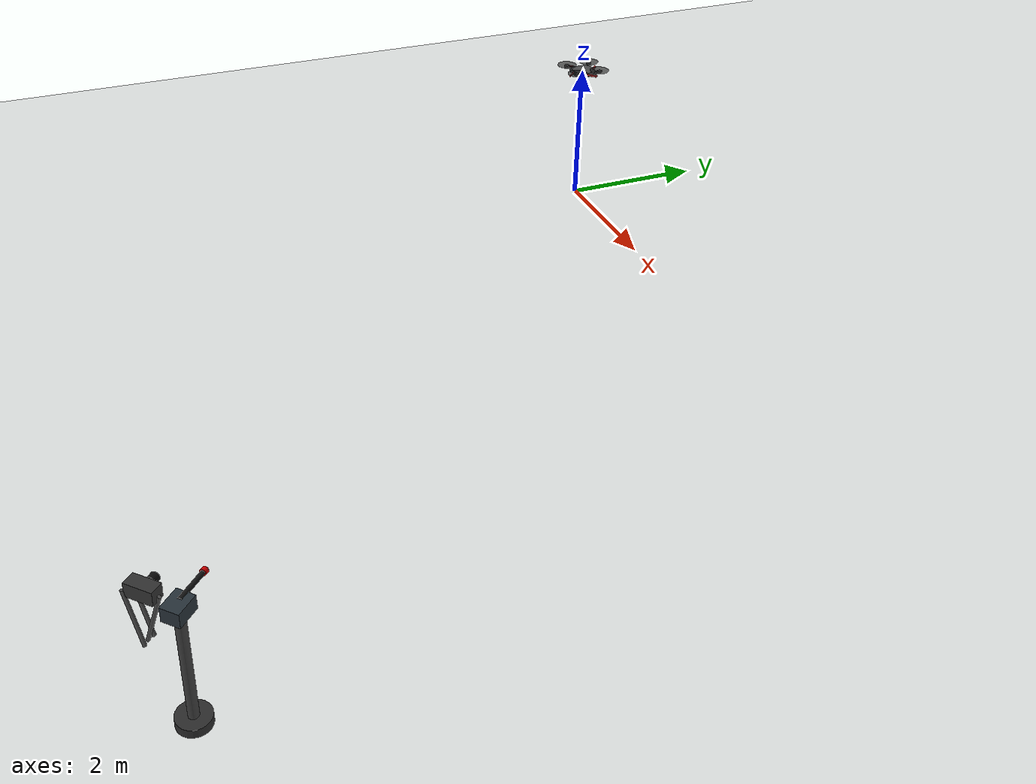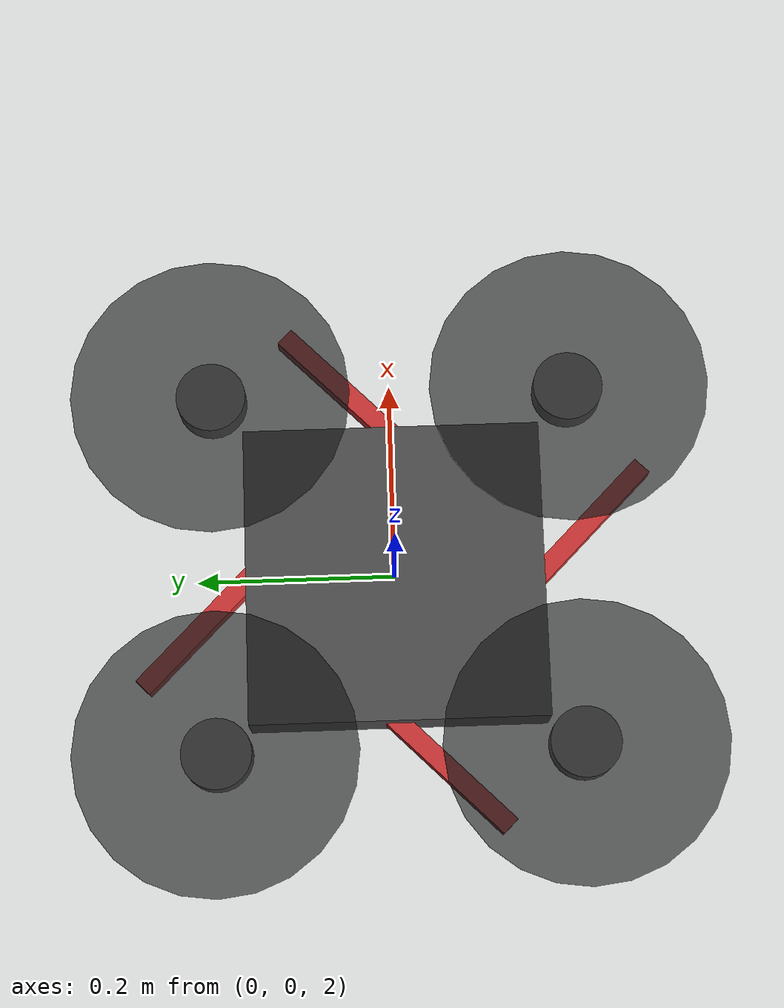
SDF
<?xml version="1.0" ?>
<sdf version="1.8">
  <world name="drone_world">

    <!-- ===== 物理引擎 ===== -->
    <physics name="1ms" type="ignored">
      <max_step_size>0.001</max_step_size>
      <real_time_factor>1.0</real_time_factor>
    </physics>

    <!-- ===== 插件 ===== -->
    <plugin
      filename="gz-sim-user-commands-system"
      name="gz::sim::systems::UserCommands">
    </plugin>
    <plugin
      filename="gz-sim-physics-system"
      name="gz::sim::systems::Physics">
    </plugin>
    <plugin
      filename="gz-sim-scene-broadcaster-system"
      name="gz::sim::systems::SceneBroadcaster">
    </plugin>
    <plugin
      filename="gz-sim-sensors-system"
      name="gz::sim::systems::Sensors">
    </plugin>

    <!-- ===== 光源 ===== -->
    <light type="directional" name="sun">
      <cast_shadows>true</cast_shadows>
      <pose>0 0 10 0 0 0</pose>
      <diffuse>0.8 0.8 0.8 1</diffuse>
      <specular>0.2 0.2 0.2 1</specular>
      <direction>-0.5 0.1 -0.9</direction>
    </light>

    <!-- ===== 地面 ===== -->
    <model name="ground_plane">
      <static>true</static>
      <link name="link">
        <collision name="collision">
          <geometry>
            <plane>
              <normal>0 0 1</normal>
              <size>100 100</size>
            </plane>
          </geometry>
        </collision>
        <visual name="visual">
          <geometry>
            <plane>
              <normal>0 0 1</normal>
              <size>100 100</size>
            </plane>
          </geometry>
          <material>
            <ambient>0.3 0.3 0.3</ambient>
            <diffuse>0.6 0.6 0.6</diffuse>
            <specular>0.1 0.1 0.1</specular>
          </material>
        </visual>
      </link>
    </model>

    <!-- ===== 四旋翼无人机 ===== -->
    <model name="quadcopter">
      <pose>0 0 2.0 0 0 0</pose>
      <link name="base_link">
        <!-- 轨迹由 SetEntityState 控制；关闭重力避免控制器启动前无人机下落。 -->
        <gravity>false</gravity>

        <!-- 中心机身 -->
        <visual name="body">
          <cast_shadows>false</cast_shadows>
          <geometry>
            <box>
              <size>0.30 0.30 0.06</size>
            </box>
          </geometry>
          <material>
            <ambient>0.2 0.2 0.2 1</ambient>
            <diffuse>0.3 0.3 0.3 1</diffuse>
          </material>
        </visual>

        <!-- 机臂 1: +X 方向 -->
        <visual name="arm_front">
          <cast_shadows>false</cast_shadows>
          <pose>0.15 0 0 0 0 0.785</pose>
          <geometry>
            <box>
              <size>0.30 0.02 0.02</size>
            </box>
          </geometry>
          <material>
            <ambient>0.8 0.2 0.2 1</ambient>
            <diffuse>0.8 0.2 0.2 1</diffuse>
          </material>
        </visual>

        <!-- 机臂 2: -X 方向 -->
        <visual name="arm_back">
          <cast_shadows>false</cast_shadows>
          <pose>-0.15 0 0 0 0 0.785</pose>
          <geometry>
            <box>
              <size>0.30 0.02 0.02</size>
            </box>
          </geometry>
          <material>
            <ambient>0.8 0.2 0.2 1</ambient>
            <diffuse>0.8 0.2 0.2 1</diffuse>
          </material>
        </visual>

        <!-- 机臂 3: +Y 方向 -->
        <visual name="arm_left">
          <cast_shadows>false</cast_shadows>
          <pose>0 0.15 0 0 0 -0.785</pose>
          <geometry>
            <box>
              <size>0.30 0.02 0.02</size>
            </box>
          </geometry>
          <material>
            <ambient>0.8 0.2 0.2 1</ambient>
            <diffuse>0.8 0.2 0.2 1</diffuse>
          </material>
        </visual>

        <!-- 机臂 4: -Y 方向 -->
        <visual name="arm_right">
          <cast_shadows>false</cast_shadows>
          <pose>0 -0.15 0 0 0 -0.785</pose>
          <geometry>
            <box>
              <size>0.30 0.02 0.02</size>
            </box>
          </geometry>
          <material>
            <ambient>0.8 0.2 0.2 1</ambient>
            <diffuse>0.8 0.2 0.2 1</diffuse>
          </material>
        </visual>

        <!-- 电机 1 -->
        <visual name="motor_1">
          <cast_shadows>false</cast_shadows>
          <pose>0.18 0.18 0.04 0 0 0</pose>
          <geometry>
            <cylinder>
              <radius>0.035</radius>
              <length>0.03</length>
            </cylinder>
          </geometry>
          <material>
            <ambient>0.5 0.5 0.5 1</ambient>
            <diffuse>0.5 0.5 0.5 1</diffuse>
          </material>
        </visual>

        <!-- 电机 2 -->
        <visual name="motor_2">
          <cast_shadows>false</cast_shadows>
          <pose>-0.18 -0.18 0.04 0 0 0</pose>
          <geometry>
            <cylinder>
              <radius>0.035</radius>
              <length>0.03</length>
            </cylinder>
          </geometry>
          <material>
            <ambient>0.5 0.5 0.5 1</ambient>
            <diffuse>0.5 0.5 0.5 1</diffuse>
          </material>
        </visual>

        <!-- 电机 3 -->
        <visual name="motor_3">
          <cast_shadows>false</cast_shadows>
          <pose>0.18 -0.18 0.04 0 0 0</pose>
          <geometry>
            <cylinder>
              <radius>0.035</radius>
              <length>0.03</length>
            </cylinder>
          </geometry>
          <material>
            <ambient>0.5 0.5 0.5 1</ambient>
            <diffuse>0.5 0.5 0.5 1</diffuse>
          </material>
        </visual>

        <!-- 电机 4 -->
        <visual name="motor_4">
          <cast_shadows>false</cast_shadows>
          <pose>-0.18 0.18 0.04 0 0 0</pose>
          <geometry>
            <cylinder>
              <radius>0.035</radius>
              <length>0.03</length>
            </cylinder>
          </geometry>
          <material>
            <ambient>0.5 0.5 0.5 1</ambient>
            <diffuse>0.5 0.5 0.5 1</diffuse>
          </material>
        </visual>

        <!-- 螺旋桨 1 -->
        <visual name="propeller_1">
          <cast_shadows>false</cast_shadows>
          <pose>0.18 0.18 0.06 0 0 0</pose>
          <geometry>
            <cylinder>
              <radius>0.14</radius>
              <length>0.004</length>
            </cylinder>
          </geometry>
          <material>
            <ambient>0.1 0.1 0.1 0.7</ambient>
            <diffuse>0.1 0.1 0.1 0.7</diffuse>
          </material>
        </visual>

        <!-- 螺旋桨 2 -->
        <visual name="propeller_2">
          <cast_shadows>false</cast_shadows>
          <pose>-0.18 -0.18 0.06 0 0 0</pose>
          <geometry>
            <cylinder>
              <radius>0.14</radius>
              <length>0.004</length>
            </cylinder>
          </geometry>
          <material>
            <ambient>0.1 0.1 0.1 0.7</ambient>
            <diffuse>0.1 0.1 0.1 0.7</diffuse>
          </material>
        </visual>

        <!-- 螺旋桨 3 -->
        <visual name="propeller_3">
          <cast_shadows>false</cast_shadows>
          <pose>0.18 -0.18 0.06 0 0 0</pose>
          <geometry>
            <cylinder>
              <radius>0.14</radius>
              <length>0.004</length>
            </cylinder>
          </geometry>
          <material>
            <ambient>0.1 0.1 0.1 0.7</ambient>
            <diffuse>0.1 0.1 0.1 0.7</diffuse>
          </material>
        </visual>

        <!-- 螺旋桨 4 -->
        <visual name="propeller_4">
          <cast_shadows>false</cast_shadows>
          <pose>-0.18 0.18 0.06 0 0 0</pose>
          <geometry>
            <cylinder>
              <radius>0.14</radius>
              <length>0.004</length>
            </cylinder>
          </geometry>
          <material>
            <ambient>0.1 0.1 0.1 0.7</ambient>
            <diffuse>0.1 0.1 0.1 0.7</diffuse>
          </material>
        </visual>
      </link>
    </model>

   <!-- ===== 地面摄像机 ===== -->
   <!-- 放置在地面上，斜向上拍摄无人机 8 字飞行区域 -->
   <model name="ground_camera">
      <static>true</static>
      <pose>8.0 -8.0 1.5 0 0.044 2.356</pose>
      <!-- 位置: (8,-8,1.5) 地面高度1.5m -->
      <!-- 朝向: roll=0 pitch≈2.5° yaw=135° → 精确对准原点飞行中心 -->

      <link name="camera_link">
        <!-- 摄像机可视化外壳 -->
        <visual name="camera_body">
          <pose>0 0 0 0 0 0</pose>
          <geometry>
            <box>
              <size>0.15 0.3 0.15</size>
            </box>
          </geometry>
          <material>
            <ambient>0.1 0.1 0.1 1</ambient>
            <diffuse>0.2 0.2 0.2 1</diffuse>
          </material>
        </visual>

        <!-- 镜头可视化 -->
        <visual name="lens">
          <pose>0.15 0 0 0 1.57 0</pose>
          <geometry>
            <cylinder>
              <radius>0.05</radius>
              <length>0.08</length>
            </cylinder>
          </geometry>
          <material>
            <ambient>0.05 0.05 0.05 1</ambient>
            <diffuse>0.05 0.05 0.05 1</diffuse>
          </material>
        </visual>

        <!-- 三脚架 -->
        <visual name="tripod_leg_1">
          <pose>0 -0.08 -0.3 0.3 0 0</pose>
          <geometry>
            <cylinder>
              <radius>0.02</radius>
              <length>0.60</length>
            </cylinder>
          </geometry>
          <material>
            <ambient>0.3 0.3 0.3 1</ambient>
            <diffuse>0.3 0.3 0.3 1</diffuse>
          </material>
        </visual>

        <visual name="tripod_leg_2">
          <pose>0.07 0.08 -0.3 -0.3 0 0</pose>
          <geometry>
            <cylinder>
              <radius>0.02</radius>
              <length>0.60</length>
            </cylinder>
          </geometry>
          <material>
            <ambient>0.3 0.3 0.3 1</ambient>
            <diffuse>0.3 0.3 0.3 1</diffuse>
          </material>
        </visual>

        <visual name="tripod_leg_3">
          <pose>-0.07 0.08 -0.3 -0.3 0 0</pose>
          <geometry>
            <cylinder>
              <radius>0.02</radius>
              <length>0.60</length>
            </cylinder>
          </geometry>
          <material>
            <ambient>0.3 0.3 0.3 1</ambient>
            <diffuse>0.3 0.3 0.3 1</diffuse>
          </material>
        </visual>

        <!-- 摄像机传感器 -->
       <sensor name="camera_sensor" type="camera">
         <pose>0.15 0 0.05 0 0 0</pose>
         <always_on>true</always_on>
         <update_rate>30</update_rate>
         <visualize>true</visualize>
         <topic>ground_camera</topic>
         <camera>
            <!-- 不渲染激光束（bit 0x02），避免 YOLO 把无人机+激光线误识别为风筝 -->
            <visibility_mask>0xFFFFFFFD</visibility_mask>
           <horizontal_fov>1.047</horizontal_fov>
            <image>
              <width>640</width>
              <height>360</height>
              <format>R8G8B8</format>
            </image>
            <clip>
              <near>0.1</near>
              <far>100</far>
            </clip>
          </camera>

          <!-- 视频录制插件 -->
          <plugin
            filename="gz-sim-camera-video-recorder-system"
            name="gz::sim::systems::CameraVideoRecorder">
            <service>ground_camera/record_video</service>
          </plugin>

        </sensor>

        <!-- 深度相机：与 RGB 摄像机同位姿，用于把目标像素反投影成 3D 世界坐标 -->
        <sensor name="depth_camera_sensor" type="depth_camera">
          <pose>0.15 0 0.05 0 0 0</pose>
          <always_on>true</always_on>
          <update_rate>30</update_rate>
          <visualize>false</visualize>
          <topic>ground_camera/depth</topic>
          <camera>
            <visibility_mask>0xFFFFFFFD</visibility_mask>
            <horizontal_fov>1.047</horizontal_fov>
            <image>
              <width>640</width>
              <height>360</height>
              <format>R_FLOAT32</format>
            </image>
            <clip>
              <near>0.1</near>
              <far>100</far>
            </clip>
          </camera>
        </sensor>
      </link>
    </model>

    <!-- ===== 武器平台 ===== -->
    <!-- 放在地面摄像机右侧，炮口位置对应 laser_controller.py 的 weapon_* 默认参数 -->
    <model name="weapon_platform">
      <static>true</static>
      <pose>8.25 -7.75 0 0 0 2.356</pose>

      <link name="weapon_link">
        <visual name="base">
          <pose>0 0 0.05 0 0 0</pose>
          <geometry>
            <cylinder>
              <radius>0.18</radius>
              <length>0.10</length>
            </cylinder>
          </geometry>
          <material>
            <ambient>0.12 0.12 0.12 1</ambient>
            <diffuse>0.18 0.18 0.18 1</diffuse>
          </material>
        </visual>

        <visual name="pedestal">
          <pose>0 0 0.75 0 0 0</pose>
          <geometry>
            <cylinder>
              <radius>0.055</radius>
              <length>1.35</length>
            </cylinder>
          </geometry>
          <material>
            <ambient>0.18 0.18 0.18 1</ambient>
            <diffuse>0.25 0.25 0.25 1</diffuse>
          </material>
        </visual>

        <visual name="turret_body">
          <pose>0 0 1.43 0 0 0</pose>
          <geometry>
            <box>
              <size>0.26 0.20 0.16</size>
            </box>
          </geometry>
          <material>
            <ambient>0.10 0.12 0.14 1</ambient>
            <diffuse>0.16 0.20 0.23 1</diffuse>
          </material>
        </visual>

        <visual name="barrel">
          <pose>0.22 0 1.50 0 1.5708 0</pose>
          <geometry>
            <cylinder>
              <radius>0.025</radius>
              <length>0.38</length>
            </cylinder>
          </geometry>
          <material>
            <ambient>0.04 0.04 0.04 1</ambient>
            <diffuse>0.08 0.08 0.08 1</diffuse>
          </material>
        </visual>

       <visual name="muzzle">
         <pose>0.41 0 1.50 0 1.5708 0</pose>
         <geometry>
           <cylinder>
             <radius>0.035</radius>
             <length>0.045</length>
           </cylinder>
         </geometry>
         <material>
            <ambient>0.5 0.0 0.0 1</ambient>
            <diffuse>0.8 0.0 0.0 1</diffuse>
            <emissive>0.35 0.0 0.0 1</emissive>
         </material>
       </visual>
      </link>
    </model>

   <!-- ===== 激光束 ===== -->
   <!-- 从武器平台炮口发射的可视激光束，由 laser_controller 控制 -->
   <model name="laser_beam">
     <static>false</static>
     <pose>0 0 -100 0 0 0</pose>

     <link name="beam_link">
       <visual name="beam">
         <cast_shadows>false</cast_shadows>
          <visibility_flags>0x02</visibility_flags>
         <pose>0 0 7.5 0 0 0</pose>
         <geometry>
           <cylinder>
             <radius>0.001</radius>
             <length>15.0</length>
           </cylinder>
         </geometry>
         <material>
            <ambient>1 0 0 1</ambient>
            <diffuse>1 0 0 1</diffuse>
            <specular>0.5 0.5 0.5 1</specular>
            <emissive>1 0 0 1</emissive>
         </material>
       </visual>
      </link>
    </model>

  </world>
</sdf>
